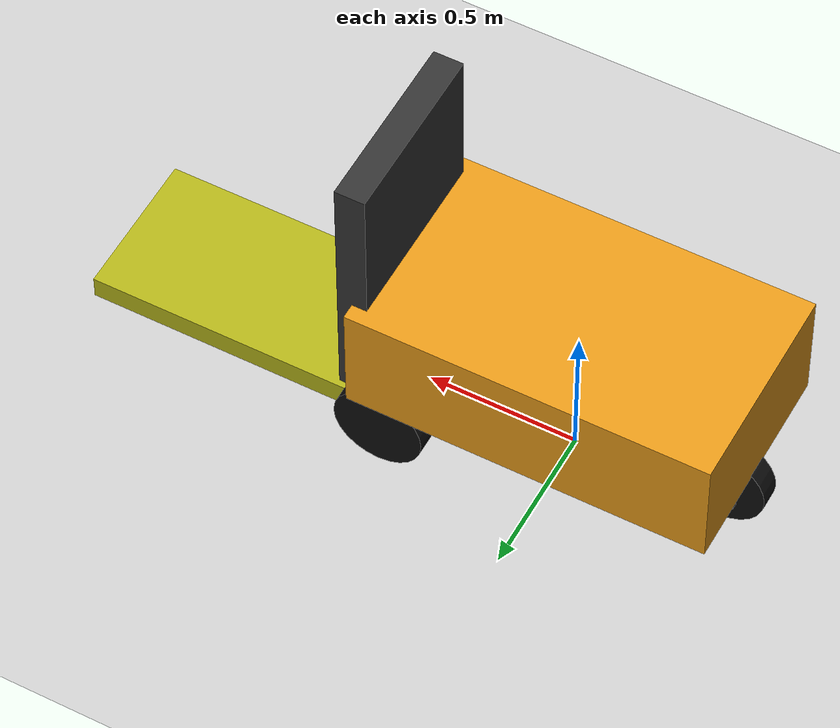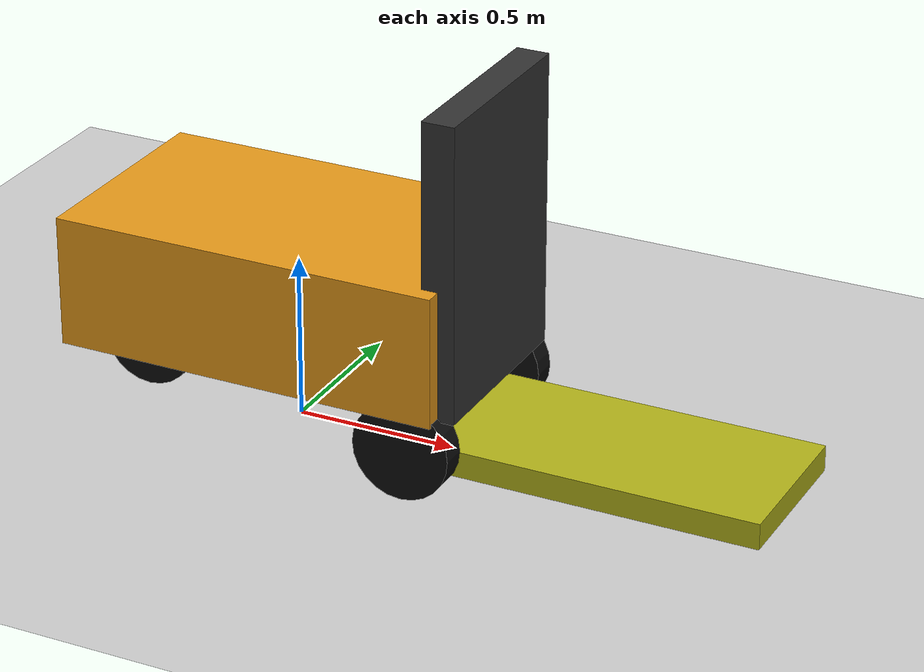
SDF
<?xml version="1.0" ?>
<!-- 叉車測試平地:純讓舵輪叉車在 gz 裡能驅動/轉向/升叉。include model://forklift,
     需把 robot/ 加進 GZ_SIM_RESOURCE_PATH。無感測器,故不掛 Sensors system。 -->
<sdf version="1.10">
  <world name="forklift_test">

    <gravity>0 0 -9.8</gravity>
    <physics name="default" type="ode">
      <max_step_size>0.001</max_step_size>
      <real_time_factor>1</real_time_factor>
    </physics>

    <plugin filename="gz-sim-physics-system"           name="gz::sim::systems::Physics"/>
    <plugin filename="gz-sim-user-commands-system"     name="gz::sim::systems::UserCommands"/>
    <plugin filename="gz-sim-scene-broadcaster-system" name="gz::sim::systems::SceneBroadcaster"/>

    <scene>
      <ambient>0.4 0.4 0.4 1</ambient>
      <background>0.7 0.8 0.9 1</background>
      <shadows>true</shadows>
    </scene>

    <light name="sun" type="directional">
      <pose>0 0 10 0 0 0</pose>
      <diffuse>0.9 0.9 0.9 1</diffuse>
      <specular>0.2 0.2 0.2 1</specular>
      <direction>0.3 0.3 -1</direction>
      <cast_shadows>true</cast_shadows>
    </light>

    <model name="ground">
      <static>true</static>
      <link name="link">
        <collision name="collision">
          <geometry><plane><normal>0 0 1</normal><size>50 50</size></plane></geometry>
          <surface><friction><ode><mu>1.0</mu><mu2>1.0</mu2></ode></friction></surface>
        </collision>
        <visual name="visual">
          <geometry><plane><normal>0 0 1</normal><size>50 50</size></plane></geometry>
          <material><ambient>0.8 0.8 0.8 1</ambient><diffuse>0.8 0.8 0.8 1</diffuse></material>
        </visual>
      </link>
    </model>

    <include>
      <uri>model://forklift</uri>
      <pose>0 0 0 0 0 0</pose>
    </include>

  </world>
</sdf>

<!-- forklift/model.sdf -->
<sdf version="1.10">
  <model name="forklift">

    <!-- ===== 車身 ===== -->
    <link name="base_link">
      <pose>0 0 0.45 0 0 0</pose>
      <inertial>
        <mass>80</mass>
        <inertia>
          <ixx>4.333</ixx><ixy>0</ixy><ixz>0</ixz>
          <iyy>10.667</iyy><iyz>0</iyz><izz>12.867</izz>
        </inertia>
      </inertial>
      <collision name="collision">
        <geometry><box><size>1.2 0.7 0.4</size></box></geometry>
      </collision>
      <visual name="visual">
        <geometry><box><size>1.2 0.7 0.4</size></box></geometry>
        <material><ambient>0.9 0.6 0.1 1</ambient><diffuse>0.9 0.6 0.1 1</diffuse></material>
      </visual>
      <!-- 桅杆視覺(叉子端立柱,純好看)-->
      <visual name="mast">
        <pose>0.6 0 0.25 0 0 0</pose>
        <geometry><box><size>0.1 0.6 0.9</size></box></geometry>
        <material><ambient>0.2 0.2 0.2 1</ambient><diffuse>0.2 0.2 0.2 1</diffuse></material>
      </visual>
    </link>

    <!-- ===== 舵輪轉向樞紐(steer_link)===== -->
    <link name="steer_link">
      <pose>-0.5 0 0.15 0 0 0</pose>
      <inertial>
        <mass>2</mass>
        <inertia><ixx>0.0048</ixx><ixy>0</ixy><ixz>0</ixz><iyy>0.0048</iyy><iyz>0</iyz><izz>0.0048</izz></inertia>
      </inertial>
      <visual name="visual">
        <geometry><box><size>0.12 0.12 0.12</size></box></geometry>
        <material><ambient>0.1 0.1 0.1 1</ambient><diffuse>0.1 0.1 0.1 1</diffuse></material>
      </visual>
    </link>

    <!-- ===== 舵輪(驅動輪)===== -->
    <link name="traction_wheel">
      <pose>-0.5 0 0.15 1.5708 0 0</pose>
      <inertial>
        <mass>5</mass>
        <inertia><ixx>0.0308</ixx><ixy>0</ixy><ixz>0</ixz><iyy>0.0308</iyy><iyz>0</iyz><izz>0.05625</izz></inertia>
      </inertial>
      <collision name="collision">
        <geometry><cylinder><radius>0.15</radius><length>0.08</length></cylinder></geometry>
        <surface><friction><ode><mu>1.2</mu><mu2>1.2</mu2></ode></friction></surface>
      </collision>
      <visual name="visual">
        <geometry><cylinder><radius>0.15</radius><length>0.08</length></cylinder></geometry>
        <material><ambient>0.05 0.05 0.05 1</ambient><diffuse>0.05 0.05 0.05 1</diffuse></material>
      </visual>
    </link>

    <!-- ===== 兩顆從動承載輪(叉子端)===== -->
    <link name="left_load_wheel">
      <pose>0.5 0.3 0.15 1.5708 0 0</pose>
      <inertial>
        <mass>4</mass>
        <inertia><ixx>0.02463</ixx><ixy>0</ixy><ixz>0</ixz><iyy>0.02463</iyy><iyz>0</iyz><izz>0.045</izz></inertia>
      </inertial>
      <collision name="collision">
        <geometry><cylinder><radius>0.15</radius><length>0.08</length></cylinder></geometry>
        <surface><friction><ode><mu>0.6</mu><mu2>0.6</mu2></ode></friction></surface>
      </collision>
      <visual name="visual">
        <geometry><cylinder><radius>0.15</radius><length>0.08</length></cylinder></geometry>
        <material><ambient>0.05 0.05 0.05 1</ambient><diffuse>0.05 0.05 0.05 1</diffuse></material>
      </visual>
    </link>
    <link name="right_load_wheel">
      <pose>0.5 -0.3 0.15 1.5708 0 0</pose>
      <inertial>
        <mass>4</mass>
        <inertia><ixx>0.02463</ixx><ixy>0</ixy><ixz>0</ixz><iyy>0.02463</iyy><iyz>0</iyz><izz>0.045</izz></inertia>
      </inertial>
      <collision name="collision">
        <geometry><cylinder><radius>0.15</radius><length>0.08</length></cylinder></geometry>
        <surface><friction><ode><mu>0.6</mu><mu2>0.6</mu2></ode></friction></surface>
      </collision>
      <visual name="visual">
        <geometry><cylinder><radius>0.15</radius><length>0.08</length></cylinder></geometry>
        <material><ambient>0.05 0.05 0.05 1</ambient><diffuse>0.05 0.05 0.05 1</diffuse></material>
      </visual>
    </link>

    <!-- ===== 叉子(可升降)===== -->
    <link name="fork_carriage">
      <pose>1.05 0 0.1 0 0 0</pose>
      <inertial>
        <mass>12</mass>
        <inertia><ixx>0.2564</ixx><ixy>0</ixy><ixz>0</ixz><iyy>1.0064</iyy><iyz>0</iyz><izz>1.25</izz></inertia>
      </inertial>
      <collision name="collision">
        <geometry><box><size>1.0 0.5 0.08</size></box></geometry>
      </collision>
      <visual name="visual">
        <geometry><box><size>1.0 0.5 0.08</size></box></geometry>
        <material><ambient>0.7 0.7 0.1 1</ambient><diffuse>0.7 0.7 0.1 1</diffuse></material>
      </visual>
    </link>

    <!-- ===== 關節 ===== -->
    <!-- 轉向:base → steer_link,繞 Z -->
    <joint name="steering_joint" type="revolute">
      <parent>base_link</parent><child>steer_link</child>
      <axis><xyz>0 0 1</xyz><limit><lower>-0.7</lower><upper>0.7</upper><effort>200</effort><velocity>2</velocity></limit></axis>
    </joint>
    <!-- 驅動:steer_link → 舵輪,繞 Y(連續)-->
    <joint name="traction_joint" type="revolute">
      <parent>steer_link</parent><child>traction_wheel</child>
      <axis><xyz>0 1 0</xyz><limit><lower>-1e16</lower><upper>1e16</upper><effort>200</effort><velocity>50</velocity></limit></axis>
    </joint>
    <!-- 從動輪(被動,繞 Y 自由滾)-->
    <joint name="left_load_joint" type="revolute">
      <parent>base_link</parent><child>left_load_wheel</child>
      <axis><xyz>0 1 0</xyz><limit><lower>-1e16</lower><upper>1e16</upper><effort>0</effort><velocity>50</velocity></limit></axis>
    </joint>
    <joint name="right_load_joint" type="revolute">
      <parent>base_link</parent><child>right_load_wheel</child>
      <axis><xyz>0 1 0</xyz><limit><lower>-1e16</lower><upper>1e16</upper><effort>0</effort><velocity>50</velocity></limit></axis>
    </joint>
    <!-- 叉子升降:base → fork_carriage,沿 Z(prismatic)-->
    <joint name="fork_joint" type="prismatic">
      <parent>base_link</parent><child>fork_carriage</child>
      <axis><xyz>0 0 1</xyz><limit><lower>0</lower><upper>0.5</upper><effort>3000</effort><velocity>0.3</velocity></limit></axis>
    </joint>

    <!-- ===== gz 原生控制 plugin(純 Gazebo,不需 ROS 2)===== -->
    <!-- 舵輪驅動:速度命令(gz.msgs.Double, rad/s)-->
    <plugin filename="gz-sim-joint-controller-system" name="gz::sim::systems::JointController">
      <joint_name>traction_joint</joint_name>
      <topic>/forklift/traction</topic>
    </plugin>
    <!-- 轉向:位置命令(gz.msgs.Double, rad)。PID 待調 -->
    <plugin filename="gz-sim-joint-position-controller-system" name="gz::sim::systems::JointPositionController">
      <joint_name>steering_joint</joint_name>
      <topic>/forklift/steer</topic>
      <p_gain>30</p_gain><i_gain>0.5</i_gain><d_gain>3</d_gain>
    </plugin>
    <!-- 叉子升降:位置命令(gz.msgs.Double, m)。要頂重力,p_gain 較大,待調 -->
    <plugin filename="gz-sim-joint-position-controller-system" name="gz::sim::systems::JointPositionController">
      <joint_name>fork_joint</joint_name>
      <topic>/forklift/fork</topic>
      <p_gain>8000</p_gain><i_gain>20</i_gain><d_gain>200</d_gain>
    </plugin>
    <!-- 發布車身位姿,供「它有沒有動」的測試讀取 -->
    <plugin filename="gz-sim-pose-publisher-system" name="gz::sim::systems::PosePublisher">
      <publish_model_pose>true</publish_model_pose>
      <publish_link_pose>false</publish_link_pose>
      <use_pose_vector_msg>true</use_pose_vector_msg>
      <update_frequency>20</update_frequency>
    </plugin>

  </model>
</sdf>
